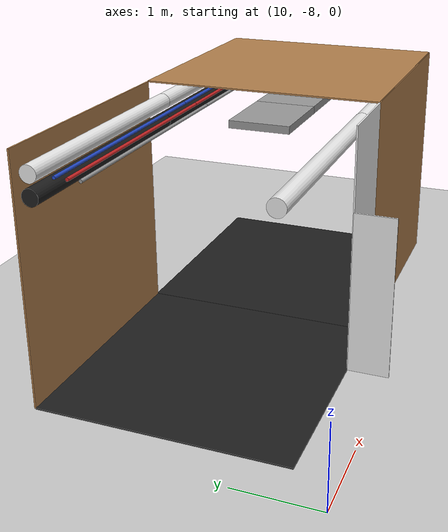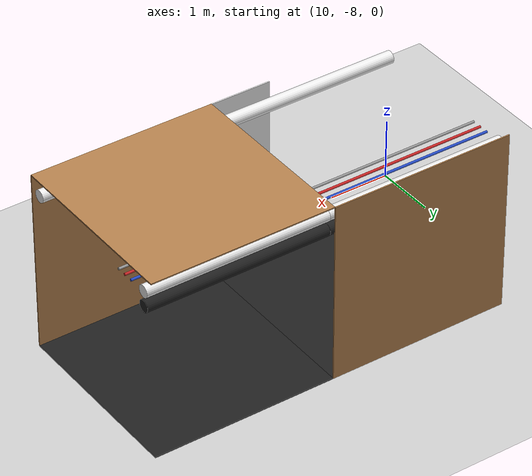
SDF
<sdf version="1.6">
 <world name="default">
  <model name="ground_plane">
   <static>1</static>
   <link name="link">
    <collision name="collision">
     <geometry><plane><normal>0 0 1</normal><size>200 200</size></plane></geometry>
     <surface><friction><ode><mu>100</mu><mu2>50</mu2></ode></friction></surface>
    </collision>
    <visual name="visual">
     <cast_shadows>0</cast_shadows>
     <geometry><plane><normal>0 0 1</normal><size>200 200</size></plane></geometry>
     <material>
      <script><uri>file://media/materials/scripts/gazebo.material</uri><name>Gazebo/Grey</name></script>
     </material>
    </visual>
   </link>
  </model>
  <model name="ceiling_1_5_-2_0_1">
   <pose>15.0 -6.0 2.55 0.0 0.0 1.57</pose>
   <link name="link_1">
    <visual name="visual">
     <geometry><box><size>0.8 1 0.1</size></box></geometry>
     <material>
      <script><uri>file://media/materials/scripts/gazebo.material</uri><name>Gazebo/Grey</name></script>
     </material>
    </visual>
    <collision name="collision"><geometry><box><size>0.8 1 0.1</size></box></geometry></collision>
   </link>
   <static>1</static>
  </model>
  <model name="ceiling_1_5_-2_2_1">
   <pose>14.0 -6.0 2.55 0.0 0.0 1.57</pose>
   <link name="link_1">
    <visual name="visual">
     <geometry><box><size>0.8 1 0.1</size></box></geometry>
     <material>
      <script><uri>file://media/materials/scripts/gazebo.material</uri><name>Gazebo/Grey</name></script>
     </material>
    </visual>
    <collision name="collision"><geometry><box><size>0.8 1 0.1</size></box></geometry></collision>
   </link>
   <static>1</static>
  </model>
  <model name="wall_left_5_-2_0_1">
   <static>1</static>
   <pose>15.0 -7.5 1.5 0.0 0.0 3.14</pose>
   <link name="link">
    <collision name="collision"><geometry><box><size>3 0.02 3</size></box></geometry></collision>
    <visual name="visual">
     <material>
      <script><name>Gazebo/Wood</name><uri>file://media/materials/scripts/gazebo.material</uri></script>
     </material>
     <geometry><box><size>3 0.02 3</size></box></geometry>
    </visual>
   </link>
  </model>
  <model name="wall_top_5_-2_0_1">
   <static>1</static>
   <pose>15.0 -6.0 3.0 1.57 0.0 1.57</pose>
   <link name="link">
    <collision name="collision"><geometry><box><size>3 0.02 3</size></box></geometry></collision>
    <visual name="visual">
     <material>
      <script><name>Gazebo/Wood</name><uri>file://media/materials/scripts/gazebo.material</uri></script>
     </material>
     <geometry><box><size>3 0.02 3</size></box></geometry>
    </visual>
   </link>
  </model>
  <model name="white_pipe_left_5_-2_0_1">
   <static>1</static>
   <pose>15.0 -6.0 2.76 0.0 0.0 1.57</pose>
   <link name="link_0">
    <visual name="visual">
     <pose>-1.3 0 0 1.57 0 0</pose>
     <geometry><cylinder><radius>0.1</radius><length>3</length></cylinder></geometry>
     <material>
      <script><uri>file://media/materials/scripts/gazebo.material</uri><name>Gazebo/White</name></script>
     </material>
    </visual>
    <collision name="collision">
     <pose>-1.3 0 0 1.57 0 0</pose>
     <geometry><cylinder><radius>0.1</radius><length>3</length></cylinder></geometry>
    </collision>
   </link>
  </model>
  <model name="white_pipe_right_5_-2_0_1">
   <static>1</static>
   <pose>15.0 -6.0 2.76 0.0 0.0 1.57</pose>
   <link name="link_0">
    <visual name="visual">
     <pose>1.3 0 0 1.57 0 0</pose>
     <geometry><cylinder><radius>0.1</radius><length>3</length></cylinder></geometry>
     <material>
      <script><uri>file://media/materials/scripts/gazebo.material</uri><name>Gazebo/White</name></script>
     </material>
    </visual>
    <collision name="collision">
     <pose>1.3 0 0 1.57 0 0</pose>
     <geometry><cylinder><radius>0.1</radius><length>3</length></cylinder></geometry>
    </collision>
   </link>
  </model>
  <model name="black_pipe_right_5_-2_0_1">
   <static>1</static>
   <pose>15.0 -6.0 2.76 0.0 0.0 1.57</pose>
   <link name="link_0">
    <visual name="visual">
     <pose>1.3 0 -0.25 1.57 0 0</pose>
     <geometry><cylinder><radius>0.1</radius><length>3</length></cylinder></geometry>
     <material>
      <script><uri>file://media/materials/scripts/gazebo.material</uri><name>Gazebo/Black</name></script>
     </material>
    </visual>
    <collision name="collision">
     <pose>1.3 0 -0.25 1.57 0 0</pose>
     <geometry><cylinder><radius>0.1</radius><length>3</length></cylinder></geometry>
    </collision>
   </link>
  </model>
  <model name="grey_pipe_right_5_-2_0_1">
   <static>1</static>
   <pose>15.0 -6.0 2.76 0.0 0.0 1.57</pose>
   <link name="link_0">
    <visual name="visual">
     <pose>0.7 0 0 1.57 0 0</pose>
     <geometry><cylinder><radius>0.02</radius><length>3</length></cylinder></geometry>
     <material>
      <script><uri>file://media/materials/scripts/gazebo.material</uri><name>Gazebo/Grey</name></script>
     </material>
    </visual>
    <collision name="collision">
     <pose>0.7 0 0 1.57 0 0</pose>
     <geometry><cylinder><radius>0.02</radius><length>3</length></cylinder></geometry>
    </collision>
   </link>
  </model>
  <model name="red_pipe_right_5_-2_0_1">
   <static>1</static>
   <pose>15.0 -6.0 2.76 0.0 0.0 1.57</pose>
   <link name="link_0">
    <visual name="visual">
     <pose>0.85 0 0 1.57 0 0</pose>
     <geometry><cylinder><radius>0.02</radius><length>3</length></cylinder></geometry>
     <material>
      <script><uri>file://media/materials/scripts/gazebo.material</uri><name>Gazebo/Red</name></script>
     </material>
    </visual>
    <collision name="collision">
     <pose>0.85 0 0 1.57 0 0</pose>
     <geometry><cylinder><radius>0.02</radius><length>3</length></cylinder></geometry>
    </collision>
   </link>
  </model>
  <model name="blue_pipe_right_5_-2_0_1">
   <static>1</static>
   <pose>15.0 -6.0 2.76 0.0 0.0 1.57</pose>
   <link name="link_0">
    <visual name="visual">
     <pose>1 0 0 1.57 0 0</pose>
     <geometry><cylinder><radius>0.02</radius><length>3</length></cylinder></geometry>
     <material>
      <script><uri>file://media/materials/scripts/gazebo.material</uri><name>Gazebo/Blue</name></script>
     </material>
    </visual>
    <collision name="collision">
     <pose>1 0 0 1.57 0 0</pose>
     <geometry><cylinder><radius>0.02</radius><length>3</length></cylinder></geometry>
    </collision>
   </link>
  </model>
  <model name="wall_bottom_5_-2_0_1">
   <static>1</static>
   <pose>15.0 -6.0 0.0 0.0 0.0 1.57</pose>
   <link name="link">
    <collision name="collision"><geometry><box><size>3 3 0.02</size></box></geometry></collision>
    <visual name="visual">
     <material>
      <script><name>Gazebo/Black</name><uri>file://media/materials/scripts/gazebo.material</uri></script>
     </material>
     <geometry><box><size>3 3 0.02</size></box></geometry>
    </visual>
   </link>
  </model>
  <model name="wall_right_4_-2_0_1">
   <static>1</static>
   <pose>12.0 -4.5 1.5 0.0 0.0 3.14</pose>
   <link name="link">
    <collision name="collision"><geometry><box><size>3 0.02 3</size></box></geometry></collision>
    <visual name="visual">
     <material>
      <script><name>Gazebo/Wood</name><uri>file://media/materials/scripts/gazebo.material</uri></script>
     </material>
     <geometry><box><size>3 0.02 3</size></box></geometry>
    </visual>
   </link>
  </model>
  <model name="white_pipe_left_4_-2_0_1">
   <static>1</static>
   <pose>12.0 -6.0 2.76 0.0 0.0 1.57</pose>
   <link name="link_0">
    <visual name="visual">
     <pose>-1.3 0 0 1.57 0 0</pose>
     <geometry><cylinder><radius>0.1</radius><length>3</length></cylinder></geometry>
     <material>
      <script><uri>file://media/materials/scripts/gazebo.material</uri><name>Gazebo/White</name></script>
     </material>
    </visual>
    <collision name="collision">
     <pose>-1.3 0 0 1.57 0 0</pose>
     <geometry><cylinder><radius>0.1</radius><length>3</length></cylinder></geometry>
    </collision>
   </link>
  </model>
  <model name="white_pipe_right_4_-2_0_1">
   <static>1</static>
   <pose>12.0 -6.0 2.76 0.0 0.0 1.57</pose>
   <link name="link_0">
    <visual name="visual">
     <pose>1.3 0 0 1.57 0 0</pose>
     <geometry><cylinder><radius>0.1</radius><length>3</length></cylinder></geometry>
     <material>
      <script><uri>file://media/materials/scripts/gazebo.material</uri><name>Gazebo/White</name></script>
     </material>
    </visual>
    <collision name="collision">
     <pose>1.3 0 0 1.57 0 0</pose>
     <geometry><cylinder><radius>0.1</radius><length>3</length></cylinder></geometry>
    </collision>
   </link>
  </model>
  <model name="black_pipe_right_4_-2_0_1">
   <static>1</static>
   <pose>12.0 -6.0 2.76 0.0 0.0 1.57</pose>
   <link name="link_0">
    <visual name="visual">
     <pose>1.3 0 -0.25 1.57 0 0</pose>
     <geometry><cylinder><radius>0.1</radius><length>3</length></cylinder></geometry>
     <material>
      <script><uri>file://media/materials/scripts/gazebo.material</uri><name>Gazebo/Black</name></script>
     </material>
    </visual>
    <collision name="collision">
     <pose>1.3 0 -0.25 1.57 0 0</pose>
     <geometry><cylinder><radius>0.1</radius><length>3</length></cylinder></geometry>
    </collision>
   </link>
  </model>
  <model name="grey_pipe_right_4_-2_0_1">
   <static>1</static>
   <pose>12.0 -6.0 2.76 0.0 0.0 1.57</pose>
   <link name="link_0">
    <visual name="visual">
     <pose>0.7 0 0 1.57 0 0</pose>
     <geometry><cylinder><radius>0.02</radius><length>3</length></cylinder></geometry>
     <material>
      <script><uri>file://media/materials/scripts/gazebo.material</uri><name>Gazebo/Grey</name></script>
     </material>
    </visual>
    <collision name="collision">
     <pose>0.7 0 0 1.57 0 0</pose>
     <geometry><cylinder><radius>0.02</radius><length>3</length></cylinder></geometry>
    </collision>
   </link>
  </model>
  <model name="red_pipe_right_4_-2_0_1">
   <static>1</static>
   <pose>12.0 -6.0 2.76 0.0 0.0 1.57</pose>
   <link name="link_0">
    <visual name="visual">
     <pose>0.85 0 0 1.57 0 0</pose>
     <geometry><cylinder><radius>0.02</radius><length>3</length></cylinder></geometry>
     <material>
      <script><uri>file://media/materials/scripts/gazebo.material</uri><name>Gazebo/Red</name></script>
     </material>
    </visual>
    <collision name="collision">
     <pose>0.85 0 0 1.57 0 0</pose>
     <geometry><cylinder><radius>0.02</radius><length>3</length></cylinder></geometry>
    </collision>
   </link>
  </model>
  <model name="blue_pipe_right_4_-2_0_1">
   <static>1</static>
   <pose>12.0 -6.0 2.76 0.0 0.0 1.57</pose>
   <link name="link_0">
    <visual name="visual">
     <pose>1 0 0 1.57 0 0</pose>
     <geometry><cylinder><radius>0.02</radius><length>3</length></cylinder></geometry>
     <material>
      <script><uri>file://media/materials/scripts/gazebo.material</uri><name>Gazebo/Blue</name></script>
     </material>
    </visual>
    <collision name="collision">
     <pose>1 0 0 1.57 0 0</pose>
     <geometry><cylinder><radius>0.02</radius><length>3</length></cylinder></geometry>
    </collision>
   </link>
  </model>
  <model name="wall_bottom_4_-2_0_1">
   <static>1</static>
   <pose>12.0 -6.0 0.0 0.0 0.0 1.57</pose>
   <link name="link">
    <collision name="collision"><geometry><box><size>3 3 0.02</size></box></geometry></collision>
    <visual name="visual">
     <material>
      <script><name>Gazebo/Black</name><uri>file://media/materials/scripts/gazebo.material</uri></script>
     </material>
     <geometry><box><size>3 3 0.02</size></box></geometry>
    </visual>
   </link>
  </model>
  <model name="wall_left_front_right_4_-2_0_1">
   <static>1</static>
   <pose>13.0 -7.5 1.5 0.0 0.0 3.14</pose>
   <link name="link">
    <collision name="collision"><geometry><box><size>1.0 0.02 3</size></box></geometry></collision>
    <visual name="visual">
     <material>
      <script><name>Gazebo/White</name><uri>file://media/materials/scripts/gazebo.material</uri></script>
     </material>
     <geometry><box><size>1.0 0.02 3</size></box></geometry>
    </visual>
   </link>
  </model>
  <model name="wall_left_inside_right_4_-2_0_1">
   <static>1</static>
   <pose>12.5 -7.75 1.0 0.0 0.0 1.57</pose>
   <link name="link">
    <collision name="collision"><geometry><box><size>0.5 0.02 2</size></box></geometry></collision>
    <visual name="visual">
     <material>
      <script><name>Gazebo/White</name><uri>file://media/materials/scripts/gazebo.material</uri></script>
     </material>
     <geometry><box><size>0.5 0.02 2</size></box></geometry>
    </visual>
   </link>
  </model>
 </world>
</sdf>
